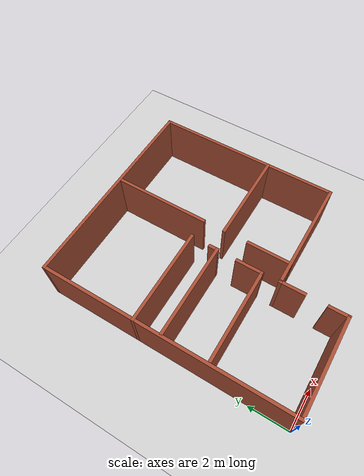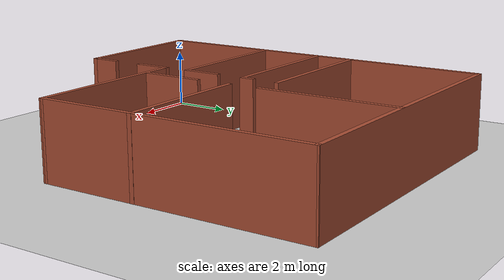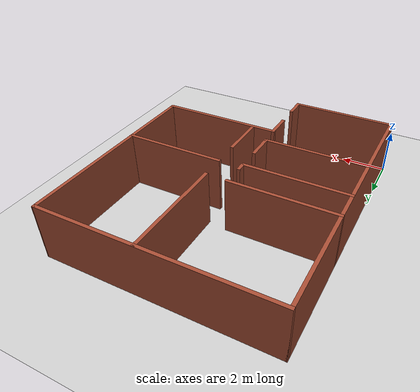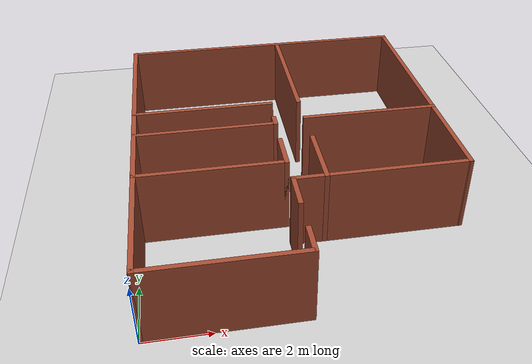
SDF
<sdf version="1.7">
 <world name="default">
  <light name="sun" type="directional">
   <pose>0 0 10 0 -0 0</pose>
   <diffuse>0.8 0.8 0.8 1</diffuse>
   <specular>0.2 0.2 0.2 1</specular>
   <attenuation>
    <range>1000</range>
    <constant>0.9</constant>
    <linear>0.01</linear>
    <quadratic>0.001</quadratic>
   </attenuation>
   <direction>-0.5 0.1 -0.9</direction>
   <spot><inner_angle>0</inner_angle><outer_angle>0</outer_angle><falloff>0</falloff></spot>
  </light>
  <model name="ground_plane">
   <static>1</static>
   <link name="link">
    <collision name="collision">
     <geometry><plane><normal>0 0 1</normal><size>100 100</size></plane></geometry>
     <surface>
      <contact><collide_bitmask>65535</collide_bitmask></contact>
      <friction><ode><mu>100</mu><mu2>50</mu2></ode></friction>
     </surface>
    </collision>
    <visual name="visual">
     <cast_shadows>0</cast_shadows>
     <geometry><plane><normal>0 0 1</normal><size>100 100</size></plane></geometry>
     <material>
      <script><uri>file://media/materials/scripts/gazebo.material</uri><name>Gazebo/Grey</name></script>
     </material>
    </visual>
   </link>
  </model>
  <gravity>0 0 -9.8</gravity>
  <magnetic_field>6e-06 2.3e-05 -4.2e-05</magnetic_field>
  <atmosphere type="adiabatic"/>
  <physics type="ode">
   <max_step_size>0.001</max_step_size>
   <real_time_factor>1</real_time_factor>
   <real_time_update_rate>1000</real_time_update_rate>
  </physics>
  <scene><ambient>0.4 0.4 0.4 1</ambient><background>0.7 0.7 0.7 1</background><shadows>1</shadows></scene>
  <spherical_coordinates>
   <surface_model>EARTH_WGS84</surface_model>
   <latitude_deg>0</latitude_deg>
   <longitude_deg>0</longitude_deg>
   <elevation>0</elevation>
   <heading_deg>0</heading_deg>
  </spherical_coordinates>
  <model name="guimaraes_house">
   <model name="guimaraes_house">
    <pose>-1e-06 -5e-06 0 0 -0 0</pose>
    <link name="Wall_0">
     <collision name="Wall_0_Collision">
      <geometry><box><size>10.08 0.15 2.5</size></box></geometry>
      <pose>0 0 1.25 0 -0 0</pose>
     </collision>
     <visual name="Wall_0_Visual">
      <pose>0 0 1.25 0 -0 0</pose>
      <geometry><box><size>10.08 0.15 2.5</size></box></geometry>
      <material>
       <script><uri>file://media/materials/scripts/gazebo.material</uri><name>Gazebo/Bricks</name></script>
       <ambient>1 1 1 1</ambient>
      </material>
      <meta><layer>0</layer></meta>
     </visual>
     <pose>-0.004717 5.99004 0 0 -0 0</pose>
    </link>
    <link name="Wall_13">
     <collision name="Wall_13_Collision">
      <geometry><box><size>5.54 0.15 2.5</size></box></geometry>
      <pose>0 0 1.25 0 -0 0</pose>
     </collision>
     <visual name="Wall_13_Visual">
      <pose>0 0 1.25 0 -0 0</pose>
      <geometry><box><size>5.54 0.15 2.5</size></box></geometry>
      <material>
       <script><uri>file://media/materials/scripts/gazebo.material</uri><name>Gazebo/Bricks</name></script>
       <ambient>1 1 1 1</ambient>
      </material>
      <meta><layer>0</layer></meta>
     </visual>
     <pose>2.27428 -2.94496 0 0 -0 0</pose>
    </link>
    <link name="Wall_16">
     <collision name="Wall_16_Collision">
      <geometry><box><size>1.25 0.15 2.5</size></box></geometry>
      <pose>0 0 1.25 0 -0 0</pose>
     </collision>
     <visual name="Wall_16_Visual">
      <pose>0 0 1.25 0 -0 0</pose>
      <geometry><box><size>1.25 0.15 2.5</size></box></geometry>
      <material>
       <script><uri>file://media/materials/scripts/gazebo.material</uri><name>Gazebo/Bricks</name></script>
       <ambient>1 1 1 1</ambient>
      </material>
      <meta><layer>0</layer></meta>
     </visual>
     <pose>-0.420717 -3.49496 0 0 -0 -1.5708</pose>
    </link>
    <link name="Wall_18">
     <collision name="Wall_18_Collision">
      <geometry><box><size>2.19 0.15 2.5</size></box></geometry>
      <pose>0 0 1.25 0 -0 0</pose>
     </collision>
     <visual name="Wall_18_Visual">
      <pose>0 0 1.25 0 -0 0</pose>
      <geometry><box><size>2.19 0.15 2.5</size></box></geometry>
      <material>
       <script><uri>file://media/materials/scripts/gazebo.material</uri><name>Gazebo/Bricks</name></script>
       <ambient>1 1 1 1</ambient>
      </material>
      <meta><layer>0</layer></meta>
     </visual>
     <pose>0.571283 -1.92696 0 0 -0 1.5708</pose>
    </link>
    <link name="Wall_27">
     <collision name="Wall_27_Collision">
      <geometry><box><size>9.08493 0.15 2.5</size></box></geometry>
      <pose>0 0 1.25 0 -0 0</pose>
     </collision>
     <visual name="Wall_27_Visual">
      <pose>0 0 1.25 0 -0 0</pose>
      <geometry><box><size>9.08493 0.15 2.5</size></box></geometry>
      <material>
       <script><uri>file://media/materials/scripts/gazebo.material</uri><name>Gazebo/Bricks</name></script>
       <ambient>1 1 1 1</ambient>
      </material>
      <meta><layer>0</layer></meta>
     </visual>
     <pose>4.96478 1.52254 0 0 -0 1.5718</pose>
    </link>
    <link name="Wall_29">
     <collision name="Wall_29_Collision">
      <geometry><box><size>4.54 0.15 2.5</size></box></geometry>
      <pose>0 0 1.25 0 -0 0</pose>
     </collision>
     <visual name="Wall_29_Visual">
      <pose>0 0 1.25 0 -0 0</pose>
      <geometry><box><size>4.54 0.15 2.5</size></box></geometry>
      <material>
       <script><uri>file://media/materials/scripts/gazebo.material</uri><name>Gazebo/Bricks</name></script>
       <ambient>1 1 1 1</ambient>
      </material>
      <meta><layer>0</layer></meta>
     </visual>
     <pose>2.77528 0.298039 0 0 -0 3.14159</pose>
    </link>
    <link name="Wall_32">
     <collision name="Wall_32_Collision">
      <geometry><box><size>4.65 0.15 2.5</size></box></geometry>
      <pose>0 0 1.25 0 -0 0</pose>
     </collision>
     <visual name="Wall_32_Visual">
      <pose>0 0 1.25 0 -0 0</pose>
      <geometry><box><size>4.65 0.15 2.5</size></box></geometry>
      <material>
       <script><uri>file://media/materials/scripts/gazebo.material</uri><name>Gazebo/Bricks</name></script>
       <ambient>1 1 1 1</ambient>
      </material>
      <meta><layer>0</layer></meta>
     </visual>
     <pose>-2.71172 -2.08996 0 0 -0 0</pose>
    </link>
    <link name="Wall_34">
     <collision name="Wall_34_Collision">
      <geometry><box><size>1.33 0.15 2.5</size></box></geometry>
      <pose>0 0 1.25 0 -0 0</pose>
     </collision>
     <visual name="Wall_34_Visual">
      <pose>0 0 1.25 0 -0 0</pose>
      <geometry><box><size>1.33 0.15 2.5</size></box></geometry>
      <material>
       <script><uri>file://media/materials/scripts/gazebo.material</uri><name>Gazebo/Bricks</name></script>
       <ambient>1 1 1 1</ambient>
      </material>
      <meta><layer>0</layer></meta>
     </visual>
     <pose>-0.461717 -1.49996 0 0 -0 1.5708</pose>
    </link>
    <link name="Wall_36">
     <collision name="Wall_36_Collision">
      <geometry><box><size>4.67 0.15 2.5</size></box></geometry>
      <pose>0 0 1.25 0 -0 0</pose>
     </collision>
     <visual name="Wall_36_Visual">
      <pose>0 0 1.25 0 -0 0</pose>
      <geometry><box><size>4.67 0.15 2.5</size></box></geometry>
      <material>
       <script><uri>file://media/materials/scripts/gazebo.material</uri><name>Gazebo/Bricks</name></script>
       <ambient>1 1 1 1</ambient>
      </material>
      <meta><layer>0</layer></meta>
     </visual>
     <pose>-2.70172 0.100039 0 0 -0 0</pose>
    </link>
    <link name="Wall_39">
     <collision name="Wall_39_Collision">
      <geometry><box><size>0.5 0.15 2.5</size></box></geometry>
      <pose>0 0 1.25 0 -0 0</pose>
     </collision>
     <visual name="Wall_39_Visual">
      <pose>0 0 1.25 0 -0 0</pose>
      <geometry><box><size>0.5 0.15 2.5</size></box></geometry>
      <material>
       <script><uri>file://media/materials/scripts/gazebo.material</uri><name>Gazebo/Bricks</name></script>
       <ambient>1 1 1 1</ambient>
      </material>
      <meta><layer>0</layer></meta>
     </visual>
     <pose>-0.441717 0.275039 0 0 -0 1.5708</pose>
    </link>
    <link name="Wall_4">
     <collision name="Wall_4_Collision">
      <geometry><box><size>12.13 0.15 2.5</size></box></geometry>
      <pose>0 0 1.25 0 -0 0</pose>
     </collision>
     <visual name="Wall_4_Visual">
      <pose>0 0 1.25 0 -0 0</pose>
      <geometry><box><size>12.13 0.15 2.5</size></box></geometry>
      <material>
       <script><uri>file://media/materials/scripts/gazebo.material</uri><name>Gazebo/Bricks</name></script>
       <ambient>1 1 1 1</ambient>
      </material>
      <meta><layer>0</layer></meta>
     </visual>
     <pose>-4.96972 3.9e-05 0 0 -0 -1.5708</pose>
    </link>
    <link name="Wall_41">
     <collision name="Wall_41_Collision">
      <geometry><box><size>4.71 0.15 2.5</size></box></geometry>
      <pose>0 0 1.25 0 -0 0</pose>
     </collision>
     <visual name="Wall_41_Visual">
      <pose>0 0 1.25 0 -0 0</pose>
      <geometry><box><size>4.71 0.15 2.5</size></box></geometry>
      <material>
       <script><uri>file://media/materials/scripts/gazebo.material</uri><name>Gazebo/Bricks</name></script>
       <ambient>1 1 1 1</ambient>
      </material>
      <meta><layer>0</layer></meta>
     </visual>
     <pose>-2.69028 1.3996 0 0 -0 0</pose>
    </link>
    <link name="Wall_44">
     <collision name="Wall_44_Collision">
      <geometry><box><size>4.75 0.15 2.5</size></box></geometry>
      <pose>0 0 1.25 0 -0 0</pose>
     </collision>
     <visual name="Wall_44_Visual">
      <pose>0 0 1.25 0 -0 0</pose>
      <geometry><box><size>4.75 0.15 2.5</size></box></geometry>
      <material>
       <script><uri>file://media/materials/scripts/gazebo.material</uri><name>Gazebo/Bricks</name></script>
       <ambient>1 1 1 1</ambient>
      </material>
      <meta><layer>0</layer></meta>
     </visual>
     <pose>0.552283 3.67704 0 0 -0 -1.5708</pose>
    </link>
    <link name="Wall_6">
     <collision name="Wall_6_Collision">
      <geometry><box><size>4.70016 0.15 2.5</size></box></geometry>
      <pose>0 0 1.25 0 -0 0</pose>
     </collision>
     <visual name="Wall_6_Visual">
      <pose>0 0 1.25 0 -0 0</pose>
      <geometry><box><size>4.70016 0.15 2.5</size></box></geometry>
      <material>
       <script><uri>file://media/materials/scripts/gazebo.material</uri><name>Gazebo/Bricks</name></script>
       <ambient>1 1 1 1</ambient>
      </material>
      <meta><layer>0</layer></meta>
     </visual>
     <pose>-2.69466 -5.99002 0 0 -0 -2.5e-05</pose>
    </link>
    <link name="Wall_8">
     <collision name="Wall_8_Collision">
      <geometry><box><size>1 0.15 2.5</size></box></geometry>
      <pose>0 0 1.25 0 -0 0</pose>
     </collision>
     <visual name="Wall_8_Visual">
      <pose>0 0 1.25 0 -0 0</pose>
      <geometry><box><size>1 0.15 2.5</size></box></geometry>
      <material>
       <script><uri>file://media/materials/scripts/gazebo.material</uri><name>Gazebo/Bricks</name></script>
       <ambient>1 1 1 1</ambient>
      </material>
      <meta><layer>0</layer></meta>
     </visual>
     <pose>-0.419604 -5.56507 0 0 -0 1.5708</pose>
    </link>
    <static>1</static>
   </model>
   <static>0</static>
   <pose>5.06021 6.0749 0 0 -0 0</pose>
  </model>
 </world>
</sdf>
